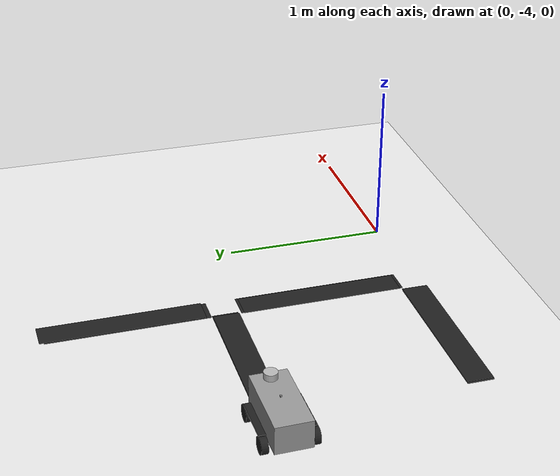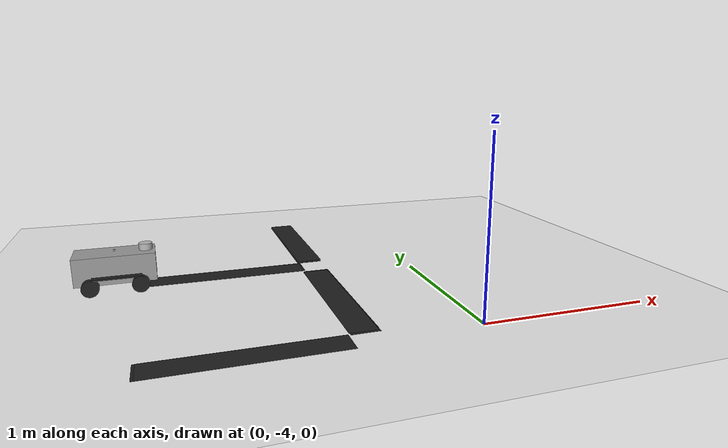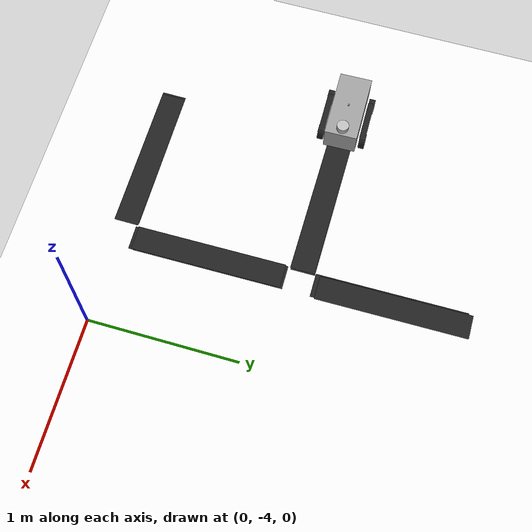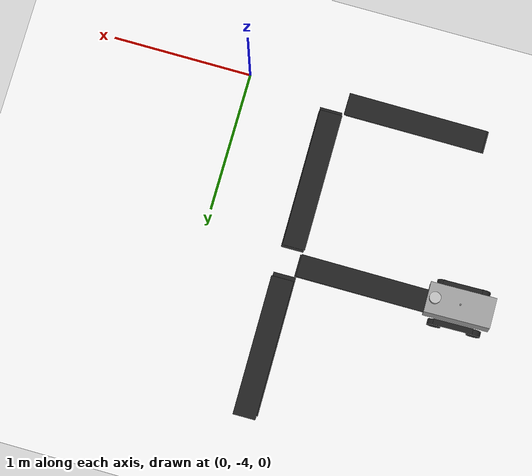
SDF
<sdf version="1.7">
 <world name="default">
  <model name="ground_plane">
   <static>1</static>
   <link name="link">
    <collision name="collision">
     <geometry><plane><normal>0 0 1</normal><size>100 100</size></plane></geometry>
     <surface>
      <contact><collide_bitmask>65535</collide_bitmask></contact>
      <friction><ode><mu>100</mu><mu2>50</mu2></ode></friction>
     </surface>
    </collision>
    <visual name="visual">
     <cast_shadows>0</cast_shadows>
     <geometry><plane><normal>0 0 1</normal><size>100 100</size></plane></geometry>
     <material>
      <script><uri>file://media/materials/scripts/gazebo.material</uri><name>Gazebo/White</name></script>
     </material>
    </visual>
   </link>
  </model>
  <model name="tankbot0">
   <pose>-1.84365 -2.78626 -0 -6e-06 -8e-06 0.018002</pose>
   <frame name="tankbot::__model__" attached_to="tankbot::chassis">
    <pose relative_to="__model__">0 0 0 0 -0 0</pose>
   </frame>
   <link name="tankbot::chassis">
    <pose relative_to="tankbot::__model__">0 0 0.135 0 -0 0</pose>
    <inertial>
     <pose>0.0465 0 0 0 -0 0</pose>
     <mass>2</mass>
     <inertia>
      <ixx>0.0125927</ixx>
      <iyy>0.0408542</iyy>
      <izz>0.0438135</izz>
      <ixy>0</ixy>
      <ixz>0</ixz>
      <iyz>0</iyz>
     </inertia>
    </inertial>
    <collision name="collision"><geometry><box><size>0.465 0.216 0.17</size></box></geometry></collision>
    <visual name="visual">
     <geometry><box><size>0.465 0.216 0.17</size></box></geometry>
     <material>
      <script><uri>file://media/materials/scripts/gazebo.material</uri><name>Gazebo/Grey</name></script>
     </material>
    </visual>
   </link>
   <link name="tankbot::wheel_fl">
    <pose relative_to="tankbot::__model__">0.1395 0.142 0.05 -1.5708 -0.087266 0</pose>
    <inertial>
     <mass>0.25</mass>
     <inertia>
      <ixx>0.000189583</ixx>
      <iyy>0.000189583</iyy>
      <izz>0.0003125</izz>
      <ixy>0</ixy>
      <ixz>0</ixz>
      <iyz>0</iyz>
     </inertia>
    </inertial>
    <collision name="collision">
     <geometry><cylinder><radius>0.05</radius><length>0.04</length></cylinder></geometry>
    </collision>
    <visual name="tankbot::wheel_fl">
     <geometry><cylinder><radius>0.05</radius><length>0.04</length></cylinder></geometry>
     <material>
      <script><uri>file://media/materials/scripts/gazebo.material</uri><name>Gazebo/Black</name></script>
     </material>
    </visual>
   </link>
   <joint name="tankbot::wheel_fl_drive" type="revolute">
    <parent>tankbot::chassis</parent>
    <child>tankbot::wheel_fl</child>
    <axis>
     <xyz>0 0 1</xyz>
     <limit><lower>-1e+16</lower><upper>1e+16</upper></limit>
     <dynamics><spring_reference>0</spring_reference><spring_stiffness>0</spring_stiffness></dynamics>
    </axis>
   </joint>
   <link name="tankbot::chain_l_up">
    <pose relative_to="tankbot::__model__">0.0098 0.14 0.1 0 -0 0</pose>
    <gravity>0</gravity>
    <collision name="collision"><geometry><box><size>0.28 0.04 0.01</size></box></geometry></collision>
    <visual name="visual">
     <geometry><box><size>0.28 0.04 0.01</size></box></geometry>
     <material>
      <script><uri>file://media/materials/scripts/gazebo.material</uri><name>Gazebo/Black</name></script>
     </material>
    </visual>
    <inertial>
     <inertia><ixx>1</ixx><ixy>0</ixy><ixz>0</ixz><iyy>1</iyy><iyz>0</iyz><izz>1</izz></inertia>
     <mass>1</mass>
    </inertial>
   </link>
   <link name="tankbot::chain_r_up">
    <pose relative_to="tankbot::__model__">0.0098 -0.14 0.1 0 -0 0</pose>
    <gravity>0</gravity>
    <collision name="collision"><geometry><box><size>0.28 0.04 0.01</size></box></geometry></collision>
    <visual name="visual">
     <geometry><box><size>0.28 0.04 0.01</size></box></geometry>
     <material>
      <script><uri>file://media/materials/scripts/gazebo.material</uri><name>Gazebo/Black</name></script>
     </material>
    </visual>
    <inertial>
     <inertia><ixx>1</ixx><ixy>0</ixy><ixz>0</ixz><iyy>1</iyy><iyz>0</iyz><izz>1</izz></inertia>
     <mass>1</mass>
    </inertial>
   </link>
   <joint name="tankbot::chain_up_joint" type="revolute">
    <parent>tankbot::chassis</parent>
    <child>tankbot::chain_r_up</child>
   </joint>
   <joint name="tankbot::chain_up_2_joint" type="revolute">
    <parent>tankbot::chassis</parent>
    <child>tankbot::chain_l_up</child>
   </joint>
   <link name="tankbot::wheel_fr">
    <pose relative_to="tankbot::__model__">0.1395 -0.142 0.05 -1.5708 -0.087266 0</pose>
    <inertial>
     <mass>0.25</mass>
     <inertia>
      <ixx>0.000189583</ixx>
      <iyy>0.000189583</iyy>
      <izz>0.0003125</izz>
      <ixy>0</ixy>
      <ixz>0</ixz>
      <iyz>0</iyz>
     </inertia>
    </inertial>
    <collision name="collision">
     <geometry><cylinder><radius>0.05</radius><length>0.04</length></cylinder></geometry>
    </collision>
    <visual name="visual">
     <geometry><cylinder><radius>0.05</radius><length>0.04</length></cylinder></geometry>
     <material>
      <script><uri>file://media/materials/scripts/gazebo.material</uri><name>Gazebo/Black</name></script>
     </material>
    </visual>
   </link>
   <joint name="tankbot::wheel_fr_drive" type="revolute">
    <parent>tankbot::chassis</parent>
    <child>tankbot::wheel_fr</child>
    <axis>
     <xyz>0 0 1</xyz>
     <limit><lower>-1e+16</lower><upper>1e+16</upper></limit>
     <dynamics><spring_reference>0</spring_reference><spring_stiffness>0</spring_stiffness></dynamics>
    </axis>
   </joint>
   <link name="tankbot::wheel_rl">
    <pose relative_to="tankbot::__model__">-0.1395 0.142 0.05 -1.5708 0 0</pose>
    <inertial>
     <mass>0.25</mass>
     <inertia>
      <ixx>0.000189583</ixx>
      <iyy>0.000189583</iyy>
      <izz>0.0003125</izz>
      <ixy>0</ixy>
      <ixz>0</ixz>
      <iyz>0</iyz>
     </inertia>
    </inertial>
    <collision name="collision">
     <geometry><cylinder><radius>0</radius><length>0</length></cylinder></geometry>
    </collision>
    <visual name="visual">
     <geometry><cylinder><radius>0.05</radius><length>0.04</length></cylinder></geometry>
     <material>
      <script><uri>file://media/materials/scripts/gazebo.material</uri><name>Gazebo/Black</name></script>
     </material>
    </visual>
   </link>
   <joint name="tankbot::wheel_rl_drive" type="revolute">
    <parent>tankbot::chassis</parent>
    <child>tankbot::wheel_rl</child>
    <axis>
     <xyz>0 0 1</xyz>
     <limit><lower>-1e+16</lower><upper>1e+16</upper></limit>
     <dynamics><spring_reference>0</spring_reference><spring_stiffness>0</spring_stiffness></dynamics>
    </axis>
   </joint>
   <link name="tankbot::wheel_rr">
    <pose relative_to="tankbot::__model__">-0.1395 -0.142 0.05 -1.5708 0 0</pose>
    <inertial>
     <mass>0.25</mass>
     <inertia>
      <ixx>0.000189583</ixx>
      <iyy>0.000189583</iyy>
      <izz>0.0003125</izz>
      <ixy>0</ixy>
      <ixz>0</ixz>
      <iyz>0</iyz>
     </inertia>
    </inertial>
    <collision name="collision">
     <geometry><cylinder><radius>0.05</radius><length>0.04</length></cylinder></geometry>
    </collision>
    <visual name="visual">
     <geometry><cylinder><radius>0.05</radius><length>0.04</length></cylinder></geometry>
     <material>
      <script><uri>file://media/materials/scripts/gazebo.material</uri><name>Gazebo/Black</name></script>
     </material>
    </visual>
   </link>
   <joint name="tankbot::wheel_rr_drive" type="revolute">
    <parent>tankbot::chassis</parent>
    <child>tankbot::wheel_rr</child>
    <axis>
     <xyz>0 0 1</xyz>
     <limit><lower>-1e+16</lower><upper>1e+16</upper></limit>
     <dynamics><spring_reference>0</spring_reference><spring_stiffness>0</spring_stiffness></dynamics>
    </axis>
   </joint>
   <frame name="tankbot::ultrasonic_sensor::__model__" attached_to="tankbot::ultrasonic_sensor::link">
    <pose relative_to="tankbot::__model__">0.18 0 0.24 0 -0 0</pose>
   </frame>
   <link name="tankbot::ultrasonic_sensor::link">
    <inertial>
     <mass>0.1</mass>
     <inertia><ixx>1</ixx><ixy>0</ixy><ixz>0</ixz><iyy>1</iyy><iyz>0</iyz><izz>1</izz></inertia>
    </inertial>
    <visual name="visual">
     <geometry><cylinder><radius>0.04</radius><length>0.04</length></cylinder></geometry>
    </visual>
    <collision name="collision-base">
     <pose>0 0 -0.0145 0 -0 0</pose>
     <geometry><box><size>0.05 0.05 0.041</size></box></geometry>
    </collision>
    <collision name="collision-top">
     <pose>0 0 0.0205 0 -0 0</pose>
     <geometry><cylinder><radius>0.021</radius><length>0.029</length></cylinder></geometry>
    </collision>
    <sensor name="sonar" type="sonar">
     <pose>0.04 0 0 0 1.5 3.14</pose>
     <sonar><min>0</min><max>3</max><radius>0.3</radius></sonar>
     <plugin name="sonar" filename="libSonarPlugin.so"/>
     <always_on>1</always_on>
     <update_rate>30</update_rate>
     <visualize>1</visualize>
    </sensor>
    <pose relative_to="tankbot::ultrasonic_sensor::__model__">0 0 0 0 -0 0</pose>
   </link>
   <joint name="tankbot::sonar_joint" type="fixed">
    <child>tankbot::ultrasonic_sensor::link</child>
    <parent>tankbot::chassis</parent>
   </joint>
   <frame name="tankbot::camera_sensor::__model__" attached_to="tankbot::camera_sensor::link">
    <pose relative_to="tankbot::__model__">0.2 0 0.04 0 1.57 0</pose>
   </frame>
   <link name="tankbot::camera_sensor::link">
    <inertial>
     <mass>0.1</mass>
     <inertia><ixx>1</ixx><ixy>0</ixy><ixz>0</ixz><iyy>1</iyy><iyz>0</iyz><izz>1</izz></inertia>
    </inertial>
    <visual name="visual">
     <geometry><box><size>0.01 0.07 0.04</size></box></geometry>
     <material>
      <script><uri>file://media/materials/scripts/gazebo.material</uri><name>Gazebo/Red</name></script>
     </material>
    </visual>
    <collision name="collision">
     <pose>0 0 -0.0145 0 -0 0</pose>
     <geometry><box><size>0.01 0.07 0.04</size></box></geometry>
    </collision>
    <sensor name="camera" type="camera">
     <camera>
      <horizontal_fov>1.39626</horizontal_fov>
      <image><width>2</width><height>2</height></image>
      <clip><near>0.02</near><far>300</far></clip>
     </camera>
     <always_on>1</always_on>
     <update_rate>10</update_rate>
     <visualize>1</visualize>
     <plugin name="camera_controller" filename="libCameraPlugin.so"/>
    </sensor>
    <pose relative_to="tankbot::camera_sensor::__model__">0 0 0 0 -0 0</pose>
   </link>
   <frame name="tankbot::microphone_sensor::__model__" attached_to="tankbot::microphone_sensor::link">
    <pose relative_to="tankbot::__model__">0 0 0.23 0 -0 0</pose>
   </frame>
   <link name="tankbot::microphone_sensor::link">
    <inertial>
     <mass>0.1</mass>
     <inertia><ixx>1</ixx><ixy>0</ixy><ixz>0</ixz><iyy>1</iyy><iyz>0</iyz><izz>1</izz></inertia>
    </inertial>
    <visual name="visual">
     <geometry><box><size>0.01 0.01 0.01</size></box></geometry>
     <material>
      <script><uri>file://media/materials/scripts/gazebo.material</uri><name>Gazebo/Grey</name></script>
     </material>
    </visual>
    <collision name="collision"><geometry><box><size>0.01 0.01 0.01</size></box></geometry></collision>
    <pose relative_to="tankbot::microphone_sensor::__model__">0 0 0 0 -0 0</pose>
   </link>
   <plugin name="microphone_controller" filename="libmicrophone_control_plugin.so"/>
   <joint name="tankbot::camera_joint" type="fixed">
    <child>tankbot::camera_sensor::link</child>
    <parent>tankbot::chassis</parent>
   </joint>
   <plugin name="tankbot_control" filename="libtank_control_plugin.so"/>
   <plugin name="tankbot_control" filename="libtank_control_plugin.so"/>
  </model>
  <model name="unit_box_clone_0_clone_clone_0_clone_0">
   <link name="link">
    <inertial>
     <mass>1</mass>
     <inertia>
      <ixx>0.166667</ixx>
      <ixy>0</ixy>
      <ixz>0</ixz>
      <iyy>0.166667</iyy>
      <iyz>0</iyz>
      <izz>0.166667</izz>
     </inertia>
    </inertial>
    <visual name="visual">
     <geometry><box><size>1 0.160776 0.000937</size></box></geometry>
     <material>
      <script><name>Gazebo/Black</name><uri>file://media/materials/scripts/gazebo.material</uri></script>
      <shader type="pixel"><normal_map>__default__</normal_map></shader>
      <ambient>0 0 0 1</ambient>
      <diffuse>0 0 0 1</diffuse>
      <specular>0.1 0.1 0.1 1</specular>
      <emissive>0 0 0 1</emissive>
     </material>
    </visual>
    <collision name="collision">
     <geometry><box><size>1 0.160776 0.000937</size></box></geometry>
     <surface>
      <friction>
       <ode><mu>1</mu><mu2>1</mu2><fdir1>0 0 0</fdir1><slip1>0</slip1><slip2>0</slip2></ode>
       <torsional>
        <coefficient>1</coefficient>
        <patch_radius>0</patch_radius>
        <surface_radius>0</surface_radius>
        <use_patch_radius>1</use_patch_radius>
        <ode><slip>0</slip></ode>
       </torsional>
      </friction>
      <bounce><restitution_coefficient>0</restitution_coefficient><threshold>1e+06</threshold></bounce>
      <contact>
       <collide_without_contact>0</collide_without_contact>
       <collide_without_contact_bitmask>1</collide_without_contact_bitmask>
       <collide_bitmask>1</collide_bitmask>
       <ode>
        <soft_cfm>0</soft_cfm>
        <soft_erp>0.2</soft_erp>
        <kp>1e+13</kp>
        <kd>1</kd>
        <max_vel>0.01</max_vel>
        <min_depth>0</min_depth>
       </ode>
       <bullet>
        <split_impulse>1</split_impulse>
        <split_impulse_penetration_threshold>-0.01</split_impulse_penetration_threshold>
        <soft_cfm>0</soft_cfm>
        <soft_erp>0.2</soft_erp>
        <kp>1e+13</kp>
        <kd>1</kd>
       </bullet>
      </contact>
     </surface>
    </collision>
   </link>
   <static>0</static>
   <pose>-1.19978 -2.78486 0.001921 2.8e-05 -2.1e-05 -0.000752</pose>
  </model>
  <model name="unit_box_clone_0_clone_clone_0_clone_clone_clone_0_clone">
   <link name="link">
    <inertial>
     <mass>1</mass>
     <inertia>
      <ixx>0.166667</ixx>
      <ixy>0</ixy>
      <ixz>0</ixz>
      <iyy>0.166667</iyy>
      <iyz>0</iyz>
      <izz>0.166667</izz>
     </inertia>
    </inertial>
    <visual name="visual">
     <geometry><box><size>1 0.160776 0.000937</size></box></geometry>
     <material>
      <script><name>Gazebo/Black</name><uri>file://media/materials/scripts/gazebo.material</uri></script>
      <shader type="pixel"><normal_map>__default__</normal_map></shader>
      <ambient>0 0 0 1</ambient>
      <diffuse>0 0 0 1</diffuse>
      <specular>0.1 0.1 0.1 1</specular>
      <emissive>0 0 0 1</emissive>
     </material>
    </visual>
    <collision name="collision">
     <geometry><box><size>1 0.160776 0.000937</size></box></geometry>
     <surface>
      <friction>
       <ode><mu>1</mu><mu2>1</mu2><fdir1>0 0 0</fdir1><slip1>0</slip1><slip2>0</slip2></ode>
       <torsional>
        <coefficient>1</coefficient>
        <patch_radius>0</patch_radius>
        <surface_radius>0</surface_radius>
        <use_patch_radius>1</use_patch_radius>
        <ode><slip>0</slip></ode>
       </torsional>
      </friction>
      <bounce><restitution_coefficient>0</restitution_coefficient><threshold>1e+06</threshold></bounce>
      <contact>
       <collide_without_contact>0</collide_without_contact>
       <collide_without_contact_bitmask>1</collide_without_contact_bitmask>
       <collide_bitmask>1</collide_bitmask>
       <ode>
        <soft_cfm>0</soft_cfm>
        <soft_erp>0.2</soft_erp>
        <kp>1e+13</kp>
        <kd>1</kd>
        <max_vel>0.01</max_vel>
        <min_depth>0</min_depth>
       </ode>
       <bullet>
        <split_impulse>1</split_impulse>
        <split_impulse_penetration_threshold>-0.01</split_impulse_penetration_threshold>
        <soft_cfm>0</soft_cfm>
        <soft_erp>0.2</soft_erp>
        <kp>1e+13</kp>
        <kd>1</kd>
       </bullet>
      </contact>
     </surface>
    </collision>
   </link>
   <static>0</static>
   <pose>-0.619089 -2.16518 0.002135 -1.7e-05 -0.00017 -1.56286</pose>
  </model>
  <model name="unit_box_clone_0_clone_clone_0_clone_clone_clone_2_clone">
   <link name="link">
    <inertial>
     <mass>1</mass>
     <inertia>
      <ixx>0.166667</ixx>
      <ixy>0</ixy>
      <ixz>0</ixz>
      <iyy>0.166667</iyy>
      <iyz>0</iyz>
      <izz>0.166667</izz>
     </inertia>
    </inertial>
    <visual name="visual">
     <geometry><box><size>1 0.160776 0.000937</size></box></geometry>
     <material>
      <script><name>Gazebo/Black</name><uri>file://media/materials/scripts/gazebo.material</uri></script>
      <shader type="pixel"><normal_map>__default__</normal_map></shader>
      <ambient>0 0 0 1</ambient>
      <diffuse>0 0 0 1</diffuse>
      <specular>0.1 0.1 0.1 1</specular>
      <emissive>0 0 0 1</emissive>
     </material>
    </visual>
    <collision name="collision">
     <geometry><box><size>1 0.160776 0.000937</size></box></geometry>
     <surface>
      <friction>
       <ode><mu>1</mu><mu2>1</mu2><fdir1>0 0 0</fdir1><slip1>0</slip1><slip2>0</slip2></ode>
       <torsional>
        <coefficient>1</coefficient>
        <patch_radius>0</patch_radius>
        <surface_radius>0</surface_radius>
        <use_patch_radius>1</use_patch_radius>
        <ode><slip>0</slip></ode>
       </torsional>
      </friction>
      <bounce><restitution_coefficient>0</restitution_coefficient><threshold>1e+06</threshold></bounce>
      <contact>
       <collide_without_contact>0</collide_without_contact>
       <collide_without_contact_bitmask>1</collide_without_contact_bitmask>
       <collide_bitmask>1</collide_bitmask>
       <ode>
        <soft_cfm>0</soft_cfm>
        <soft_erp>0.2</soft_erp>
        <kp>1e+13</kp>
        <kd>1</kd>
        <max_vel>0.01</max_vel>
        <min_depth>0</min_depth>
       </ode>
       <bullet>
        <split_impulse>1</split_impulse>
        <split_impulse_penetration_threshold>-0.01</split_impulse_penetration_threshold>
        <soft_cfm>0</soft_cfm>
        <soft_erp>0.2</soft_erp>
        <kp>1e+13</kp>
        <kd>1</kd>
       </bullet>
      </contact>
     </surface>
    </collision>
   </link>
   <static>0</static>
   <pose>-0.626008 -3.39541 0.002213 -2e-06 3.9e-05 -1.56387</pose>
  </model>
  <model name="unit_box_clone_0_clone_clone_0_clone_1_clone">
   <link name="link">
    <inertial>
     <mass>1</mass>
     <inertia>
      <ixx>0.166667</ixx>
      <ixy>0</ixy>
      <ixz>0</ixz>
      <iyy>0.166667</iyy>
      <iyz>0</iyz>
      <izz>0.166667</izz>
     </inertia>
    </inertial>
    <visual name="visual">
     <geometry><box><size>1 0.160776 0.000937</size></box></geometry>
     <material>
      <script><name>Gazebo/Black</name><uri>file://media/materials/scripts/gazebo.material</uri></script>
      <shader type="pixel"><normal_map>__default__</normal_map></shader>
      <ambient>0 0 0 1</ambient>
      <diffuse>0 0 0 1</diffuse>
      <specular>0.1 0.1 0.1 1</specular>
      <emissive>0 0 0 1</emissive>
     </material>
    </visual>
    <collision name="collision">
     <geometry><box><size>1 0.160776 0.000937</size></box></geometry>
     <surface>
      <friction>
       <ode><mu>1</mu><mu2>1</mu2><fdir1>0 0 0</fdir1><slip1>0</slip1><slip2>0</slip2></ode>
       <torsional>
        <coefficient>1</coefficient>
        <patch_radius>0</patch_radius>
        <surface_radius>0</surface_radius>
        <use_patch_radius>1</use_patch_radius>
        <ode><slip>0</slip></ode>
       </torsional>
      </friction>
      <bounce><restitution_coefficient>0</restitution_coefficient><threshold>1e+06</threshold></bounce>
      <contact>
       <collide_without_contact>0</collide_without_contact>
       <collide_without_contact_bitmask>1</collide_without_contact_bitmask>
       <collide_bitmask>1</collide_bitmask>
       <ode>
        <soft_cfm>0</soft_cfm>
        <soft_erp>0.2</soft_erp>
        <kp>1e+13</kp>
        <kd>1</kd>
        <max_vel>0.01</max_vel>
        <min_depth>0</min_depth>
       </ode>
       <bullet>
        <split_impulse>1</split_impulse>
        <split_impulse_penetration_threshold>-0.01</split_impulse_penetration_threshold>
        <soft_cfm>0</soft_cfm>
        <soft_erp>0.2</soft_erp>
        <kp>1e+13</kp>
        <kd>1</kd>
       </bullet>
      </contact>
     </surface>
    </collision>
   </link>
   <static>0</static>
   <pose>-1.21204 -3.98588 0.002233 5e-06 2.3e-05 -0.003554</pose>
  </model>
  <model name="unit_box_clone_0_clone_clone_0_clone_0_clone">
   <link name="link">
    <inertial>
     <mass>1</mass>
     <inertia>
      <ixx>0.166667</ixx>
      <ixy>0</ixy>
      <ixz>0</ixz>
      <iyy>0.166667</iyy>
      <iyz>0</iyz>
      <izz>0.166667</izz>
     </inertia>
    </inertial>
    <visual name="visual">
     <geometry><box><size>1 0.160776 0.000937</size></box></geometry>
     <material>
      <script><name>Gazebo/Black</name><uri>file://media/materials/scripts/gazebo.material</uri></script>
      <shader type="pixel"><normal_map>__default__</normal_map></shader>
      <ambient>0 0 0 1</ambient>
      <diffuse>0 0 0 1</diffuse>
      <specular>0.1 0.1 0.1 1</specular>
      <emissive>0 0 0 1</emissive>
     </material>
    </visual>
    <collision name="collision">
     <geometry><box><size>1 0.160776 0.000937</size></box></geometry>
     <surface>
      <friction>
       <ode><mu>1</mu><mu2>1</mu2><fdir1>0 0 0</fdir1><slip1>0</slip1><slip2>0</slip2></ode>
       <torsional>
        <coefficient>1</coefficient>
        <patch_radius>0</patch_radius>
        <surface_radius>0</surface_radius>
        <use_patch_radius>1</use_patch_radius>
        <ode><slip>0</slip></ode>
       </torsional>
      </friction>
      <bounce><restitution_coefficient>0</restitution_coefficient><threshold>1e+06</threshold></bounce>
      <contact>
       <collide_without_contact>0</collide_without_contact>
       <collide_without_contact_bitmask>1</collide_without_contact_bitmask>
       <collide_bitmask>1</collide_bitmask>
       <ode>
        <soft_cfm>0</soft_cfm>
        <soft_erp>0.2</soft_erp>
        <kp>1e+13</kp>
        <kd>1</kd>
        <max_vel>0.01</max_vel>
        <min_depth>0</min_depth>
       </ode>
       <bullet>
        <split_impulse>1</split_impulse>
        <split_impulse_penetration_threshold>-0.01</split_impulse_penetration_threshold>
        <soft_cfm>0</soft_cfm>
        <soft_erp>0.2</soft_erp>
        <kp>1e+13</kp>
        <kd>1</kd>
       </bullet>
      </contact>
     </surface>
    </collision>
   </link>
   <static>0</static>
   <pose>-1.18952 -2.78099 0.000986 -0 -2.1e-05 0.002585</pose>
  </model>
  <model name="unit_box_clone_0_clone_clone_0_clone_0_clone_0">
   <link name="link">
    <inertial>
     <mass>1</mass>
     <inertia>
      <ixx>0.166667</ixx>
      <ixy>0</ixy>
      <ixz>0</ixz>
      <iyy>0.166667</iyy>
      <iyz>0</iyz>
      <izz>0.166667</izz>
     </inertia>
    </inertial>
    <visual name="visual">
     <geometry><box><size>1 0.160776 0.000937</size></box></geometry>
     <material>
      <script><name>Gazebo/Black</name><uri>file://media/materials/scripts/gazebo.material</uri></script>
      <shader type="pixel"><normal_map>__default__</normal_map></shader>
      <ambient>0 0 0 1</ambient>
      <diffuse>0 0 0 1</diffuse>
      <specular>0.1 0.1 0.1 1</specular>
      <emissive>0 0 0 1</emissive>
     </material>
    </visual>
    <collision name="collision">
     <geometry><box><size>1 0.160776 0.000937</size></box></geometry>
     <surface>
      <friction>
       <ode><mu>1</mu><mu2>1</mu2><fdir1>0 0 0</fdir1><slip1>0</slip1><slip2>0</slip2></ode>
       <torsional>
        <coefficient>1</coefficient>
        <patch_radius>0</patch_radius>
        <surface_radius>0</surface_radius>
        <use_patch_radius>1</use_patch_radius>
        <ode><slip>0</slip></ode>
       </torsional>
      </friction>
      <bounce><restitution_coefficient>0</restitution_coefficient><threshold>1e+06</threshold></bounce>
      <contact>
       <collide_without_contact>0</collide_without_contact>
       <collide_without_contact_bitmask>1</collide_without_contact_bitmask>
       <collide_bitmask>1</collide_bitmask>
       <ode>
        <soft_cfm>0</soft_cfm>
        <soft_erp>0.2</soft_erp>
        <kp>1e+13</kp>
        <kd>1</kd>
        <max_vel>0.01</max_vel>
        <min_depth>0</min_depth>
       </ode>
       <bullet>
        <split_impulse>1</split_impulse>
        <split_impulse_penetration_threshold>-0.01</split_impulse_penetration_threshold>
        <soft_cfm>0</soft_cfm>
        <soft_erp>0.2</soft_erp>
        <kp>1e+13</kp>
        <kd>1</kd>
       </bullet>
      </contact>
     </surface>
    </collision>
   </link>
   <static>0</static>
   <pose>-1.22938 -2.78202 0.000264 0 0.000409 0.000899</pose>
  </model>
  <model name="unit_box_clone_0_clone_clone_0_clone_clone_clone_2_clone_clone">
   <link name="link">
    <inertial>
     <mass>1</mass>
     <inertia>
      <ixx>0.166667</ixx>
      <ixy>0</ixy>
      <ixz>0</ixz>
      <iyy>0.166667</iyy>
      <iyz>0</iyz>
      <izz>0.166667</izz>
     </inertia>
    </inertial>
    <visual name="visual">
     <geometry><box><size>1 0.160776 0.000937</size></box></geometry>
     <material>
      <script><name>Gazebo/Black</name><uri>file://media/materials/scripts/gazebo.material</uri></script>
      <shader type="pixel"><normal_map>__default__</normal_map></shader>
      <ambient>0 0 0 1</ambient>
      <diffuse>0 0 0 1</diffuse>
      <specular>0.1 0.1 0.1 1</specular>
      <emissive>0 0 0 1</emissive>
     </material>
    </visual>
    <collision name="collision">
     <geometry><box><size>1 0.160776 0.000937</size></box></geometry>
     <surface>
      <friction>
       <ode><mu>1</mu><mu2>1</mu2><fdir1>0 0 0</fdir1><slip1>0</slip1><slip2>0</slip2></ode>
       <torsional>
        <coefficient>1</coefficient>
        <patch_radius>0</patch_radius>
        <surface_radius>0</surface_radius>
        <use_patch_radius>1</use_patch_radius>
        <ode><slip>0</slip></ode>
       </torsional>
      </friction>
      <bounce><restitution_coefficient>0</restitution_coefficient><threshold>1e+06</threshold></bounce>
      <contact>
       <collide_without_contact>0</collide_without_contact>
       <collide_without_contact_bitmask>1</collide_without_contact_bitmask>
       <collide_bitmask>1</collide_bitmask>
       <ode>
        <soft_cfm>0</soft_cfm>
        <soft_erp>0.2</soft_erp>
        <kp>1e+13</kp>
        <kd>1</kd>
        <max_vel>0.01</max_vel>
        <min_depth>0</min_depth>
       </ode>
       <bullet>
        <split_impulse>1</split_impulse>
        <split_impulse_penetration_threshold>-0.01</split_impulse_penetration_threshold>
        <soft_cfm>0</soft_cfm>
        <soft_erp>0.2</soft_erp>
        <kp>1e+13</kp>
        <kd>1</kd>
       </bullet>
      </contact>
     </surface>
    </collision>
   </link>
   <static>0</static>
   <pose>-0.619301 -3.37869 0.000411 -1e-06 -0.000115 -1.56316</pose>
  </model>
  <model name="unit_box_clone_0_clone_clone_0_clone_clone_clone_2_clone_clone_1">
   <link name="link">
    <inertial>
     <mass>1</mass>
     <inertia>
      <ixx>0.166667</ixx>
      <ixy>0</ixy>
      <ixz>0</ixz>
      <iyy>0.166667</iyy>
      <iyz>0</iyz>
      <izz>0.166667</izz>
     </inertia>
    </inertial>
    <visual name="visual">
     <geometry><box><size>1 0.160776 0.000937</size></box></geometry>
     <material>
      <script><name>Gazebo/Black</name><uri>file://media/materials/scripts/gazebo.material</uri></script>
      <shader type="pixel"><normal_map>__default__</normal_map></shader>
      <ambient>0 0 0 1</ambient>
      <diffuse>0 0 0 1</diffuse>
      <specular>0.1 0.1 0.1 1</specular>
      <emissive>0 0 0 1</emissive>
     </material>
    </visual>
    <collision name="collision">
     <geometry><box><size>1 0.160776 0.000937</size></box></geometry>
     <surface>
      <friction>
       <ode><mu>1</mu><mu2>1</mu2><fdir1>0 0 0</fdir1><slip1>0</slip1><slip2>0</slip2></ode>
       <torsional>
        <coefficient>1</coefficient>
        <patch_radius>0</patch_radius>
        <surface_radius>0</surface_radius>
        <use_patch_radius>1</use_patch_radius>
        <ode><slip>0</slip></ode>
       </torsional>
      </friction>
      <bounce><restitution_coefficient>0</restitution_coefficient><threshold>1e+06</threshold></bounce>
      <contact>
       <collide_without_contact>0</collide_without_contact>
       <collide_without_contact_bitmask>1</collide_without_contact_bitmask>
       <collide_bitmask>1</collide_bitmask>
       <ode>
        <soft_cfm>0</soft_cfm>
        <soft_erp>0.2</soft_erp>
        <kp>1e+13</kp>
        <kd>1</kd>
        <max_vel>0.01</max_vel>
        <min_depth>0</min_depth>
       </ode>
       <bullet>
        <split_impulse>1</split_impulse>
        <split_impulse_penetration_threshold>-0.01</split_impulse_penetration_threshold>
        <soft_cfm>0</soft_cfm>
        <soft_erp>0.2</soft_erp>
        <kp>1e+13</kp>
        <kd>1</kd>
       </bullet>
      </contact>
     </surface>
    </collision>
   </link>
   <static>0</static>
   <pose>-0.627553 -2.19414 0.000326 -5e-06 -0.000287 -1.56208</pose>
  </model>
  <model name="unit_box_clone_0_clone_clone_0_clone_clone_clone_2_clone_clone_2">
   <link name="link">
    <inertial>
     <mass>1</mass>
     <inertia>
      <ixx>0.166667</ixx>
      <ixy>0</ixy>
      <ixz>0</ixz>
      <iyy>0.166667</iyy>
      <iyz>0</iyz>
      <izz>0.166667</izz>
     </inertia>
    </inertial>
    <visual name="visual">
     <geometry><box><size>1 0.160776 0.000937</size></box></geometry>
     <material>
      <script><name>Gazebo/Black</name><uri>file://media/materials/scripts/gazebo.material</uri></script>
      <shader type="pixel"><normal_map>__default__</normal_map></shader>
      <ambient>0 0 0 1</ambient>
      <diffuse>0 0 0 1</diffuse>
      <specular>0.1 0.1 0.1 1</specular>
      <emissive>0 0 0 1</emissive>
     </material>
    </visual>
    <collision name="collision">
     <geometry><box><size>1 0.160776 0.000937</size></box></geometry>
     <surface>
      <friction>
       <ode><mu>1</mu><mu2>1</mu2><fdir1>0 0 0</fdir1><slip1>0</slip1><slip2>0</slip2></ode>
       <torsional>
        <coefficient>1</coefficient>
        <patch_radius>0</patch_radius>
        <surface_radius>0</surface_radius>
        <use_patch_radius>1</use_patch_radius>
        <ode><slip>0</slip></ode>
       </torsional>
      </friction>
      <bounce><restitution_coefficient>0</restitution_coefficient><threshold>1e+06</threshold></bounce>
      <contact>
       <collide_without_contact>0</collide_without_contact>
       <collide_without_contact_bitmask>1</collide_without_contact_bitmask>
       <collide_bitmask>1</collide_bitmask>
       <ode>
        <soft_cfm>0</soft_cfm>
        <soft_erp>0.2</soft_erp>
        <kp>1e+13</kp>
        <kd>1</kd>
        <max_vel>0.01</max_vel>
        <min_depth>0</min_depth>
       </ode>
       <bullet>
        <split_impulse>1</split_impulse>
        <split_impulse_penetration_threshold>-0.01</split_impulse_penetration_threshold>
        <soft_cfm>0</soft_cfm>
        <soft_erp>0.2</soft_erp>
        <kp>1e+13</kp>
        <kd>1</kd>
       </bullet>
      </contact>
     </surface>
    </collision>
   </link>
   <static>0</static>
   <pose>-0.619998 -2.16552 0.001255 -1.2e-05 -0.000286 -1.56377</pose>
  </model>
  <model name="unit_box_clone_0_clone_clone_0_clone_clone_clone_2_clone_clone_0_clone">
   <link name="link">
    <inertial>
     <mass>1</mass>
     <inertia>
      <ixx>0.166667</ixx>
      <ixy>0</ixy>
      <ixz>0</ixz>
      <iyy>0.166667</iyy>
      <iyz>0</iyz>
      <izz>0.166667</izz>
     </inertia>
    </inertial>
    <visual name="visual">
     <geometry><box><size>1 0.160776 0.000937</size></box></geometry>
     <material>
      <script><name>Gazebo/Black</name><uri>file://media/materials/scripts/gazebo.material</uri></script>
      <shader type="pixel"><normal_map>__default__</normal_map></shader>
      <ambient>0 0 0 1</ambient>
      <diffuse>0 0 0 1</diffuse>
      <specular>0.1 0.1 0.1 1</specular>
      <emissive>0 0 0 1</emissive>
     </material>
    </visual>
    <collision name="collision">
     <geometry><box><size>1 0.160776 0.000937</size></box></geometry>
     <surface>
      <friction>
       <ode><mu>1</mu><mu2>1</mu2><fdir1>0 0 0</fdir1><slip1>0</slip1><slip2>0</slip2></ode>
       <torsional>
        <coefficient>1</coefficient>
        <patch_radius>0</patch_radius>
        <surface_radius>0</surface_radius>
        <use_patch_radius>1</use_patch_radius>
        <ode><slip>0</slip></ode>
       </torsional>
      </friction>
      <bounce><restitution_coefficient>0</restitution_coefficient><threshold>1e+06</threshold></bounce>
      <contact>
       <collide_without_contact>0</collide_without_contact>
       <collide_without_contact_bitmask>1</collide_without_contact_bitmask>
       <collide_bitmask>1</collide_bitmask>
       <ode>
        <soft_cfm>0</soft_cfm>
        <soft_erp>0.2</soft_erp>
        <kp>1e+13</kp>
        <kd>1</kd>
        <max_vel>0.01</max_vel>
        <min_depth>0</min_depth>
       </ode>
       <bullet>
        <split_impulse>1</split_impulse>
        <split_impulse_penetration_threshold>-0.01</split_impulse_penetration_threshold>
        <soft_cfm>0</soft_cfm>
        <soft_erp>0.2</soft_erp>
        <kp>1e+13</kp>
        <kd>1</kd>
       </bullet>
      </contact>
     </surface>
    </collision>
   </link>
   <static>0</static>
   <pose>-0.621289 -3.41325 0.001283 -2e-06 2.3e-05 -1.56341</pose>
  </model>
  <model name="unit_box_clone_0_clone_clone_0_clone_1_clone_clone">
   <link name="link">
    <inertial>
     <mass>1</mass>
     <inertia>
      <ixx>0.166667</ixx>
      <ixy>0</ixy>
      <ixz>0</ixz>
      <iyy>0.166667</iyy>
      <iyz>0</iyz>
      <izz>0.166667</izz>
     </inertia>
    </inertial>
    <visual name="visual">
     <geometry><box><size>1 0.160776 0.000937</size></box></geometry>
     <material>
      <script><name>Gazebo/Black</name><uri>file://media/materials/scripts/gazebo.material</uri></script>
      <shader type="pixel"><normal_map>__default__</normal_map></shader>
      <ambient>0 0 0 1</ambient>
      <diffuse>0 0 0 1</diffuse>
      <specular>0.1 0.1 0.1 1</specular>
      <emissive>0 0 0 1</emissive>
     </material>
    </visual>
    <collision name="collision">
     <geometry><box><size>1 0.160776 0.000937</size></box></geometry>
     <surface>
      <friction>
       <ode><mu>1</mu><mu2>1</mu2><fdir1>0 0 0</fdir1><slip1>0</slip1><slip2>0</slip2></ode>
       <torsional>
        <coefficient>1</coefficient>
        <patch_radius>0</patch_radius>
        <surface_radius>0</surface_radius>
        <use_patch_radius>1</use_patch_radius>
        <ode><slip>0</slip></ode>
       </torsional>
      </friction>
      <bounce><restitution_coefficient>0</restitution_coefficient><threshold>1e+06</threshold></bounce>
      <contact>
       <collide_without_contact>0</collide_without_contact>
       <collide_without_contact_bitmask>1</collide_without_contact_bitmask>
       <collide_bitmask>1</collide_bitmask>
       <ode>
        <soft_cfm>0</soft_cfm>
        <soft_erp>0.2</soft_erp>
        <kp>1e+13</kp>
        <kd>1</kd>
        <max_vel>0.01</max_vel>
        <min_depth>0</min_depth>
       </ode>
       <bullet>
        <split_impulse>1</split_impulse>
        <split_impulse_penetration_threshold>-0.01</split_impulse_penetration_threshold>
        <soft_cfm>0</soft_cfm>
        <soft_erp>0.2</soft_erp>
        <kp>1e+13</kp>
        <kd>1</kd>
       </bullet>
      </contact>
     </surface>
    </collision>
   </link>
   <static>0</static>
   <pose>-1.22513 -3.9826 0.000409 2e-06 0.00012 -0.000256</pose>
  </model>
  <model name="unit_box_clone_0_clone_clone_0_clone_1_clone_clone_0">
   <link name="link">
    <inertial>
     <mass>1</mass>
     <inertia>
      <ixx>0.166667</ixx>
      <ixy>0</ixy>
      <ixz>0</ixz>
      <iyy>0.166667</iyy>
      <iyz>0</iyz>
      <izz>0.166667</izz>
     </inertia>
    </inertial>
    <visual name="visual">
     <geometry><box><size>1 0.160776 0.000937</size></box></geometry>
     <material>
      <script><name>Gazebo/Black</name><uri>file://media/materials/scripts/gazebo.material</uri></script>
      <shader type="pixel"><normal_map>__default__</normal_map></shader>
      <ambient>0 0 0 1</ambient>
      <diffuse>0 0 0 1</diffuse>
      <specular>0.1 0.1 0.1 1</specular>
      <emissive>0 0 0 1</emissive>
     </material>
    </visual>
    <collision name="collision">
     <geometry><box><size>1 0.160776 0.000937</size></box></geometry>
     <surface>
      <friction>
       <ode><mu>1</mu><mu2>1</mu2><fdir1>0 0 0</fdir1><slip1>0</slip1><slip2>0</slip2></ode>
       <torsional>
        <coefficient>1</coefficient>
        <patch_radius>0</patch_radius>
        <surface_radius>0</surface_radius>
        <use_patch_radius>1</use_patch_radius>
        <ode><slip>0</slip></ode>
       </torsional>
      </friction>
      <bounce><restitution_coefficient>0</restitution_coefficient><threshold>1e+06</threshold></bounce>
      <contact>
       <collide_without_contact>0</collide_without_contact>
       <collide_without_contact_bitmask>1</collide_without_contact_bitmask>
       <collide_bitmask>1</collide_bitmask>
       <ode>
        <soft_cfm>0</soft_cfm>
        <soft_erp>0.2</soft_erp>
        <kp>1e+13</kp>
        <kd>1</kd>
        <max_vel>0.01</max_vel>
        <min_depth>0</min_depth>
       </ode>
       <bullet>
        <split_impulse>1</split_impulse>
        <split_impulse_penetration_threshold>-0.01</split_impulse_penetration_threshold>
        <soft_cfm>0</soft_cfm>
        <soft_erp>0.2</soft_erp>
        <kp>1e+13</kp>
        <kd>1</kd>
       </bullet>
      </contact>
     </surface>
    </collision>
   </link>
   <static>0</static>
   <pose>-1.21082 -3.98314 0.001344 3e-06 0.00012 -0.003477</pose>
  </model>
 </world>
</sdf>
